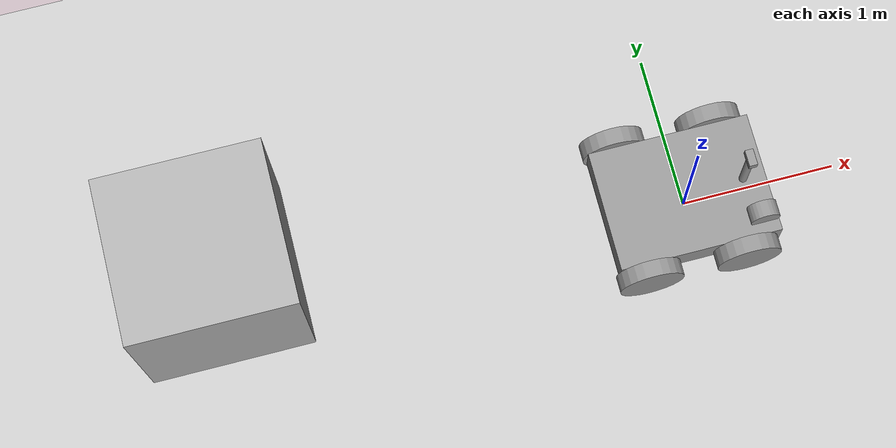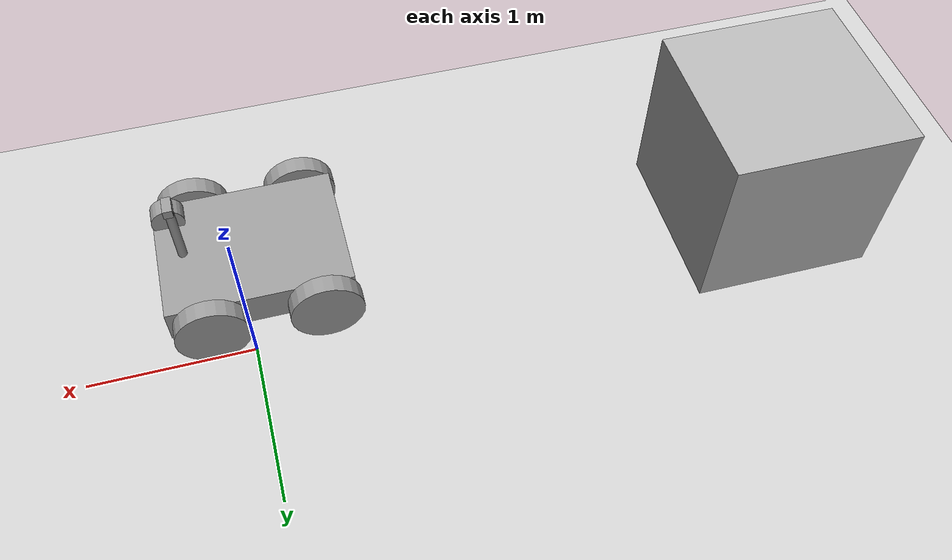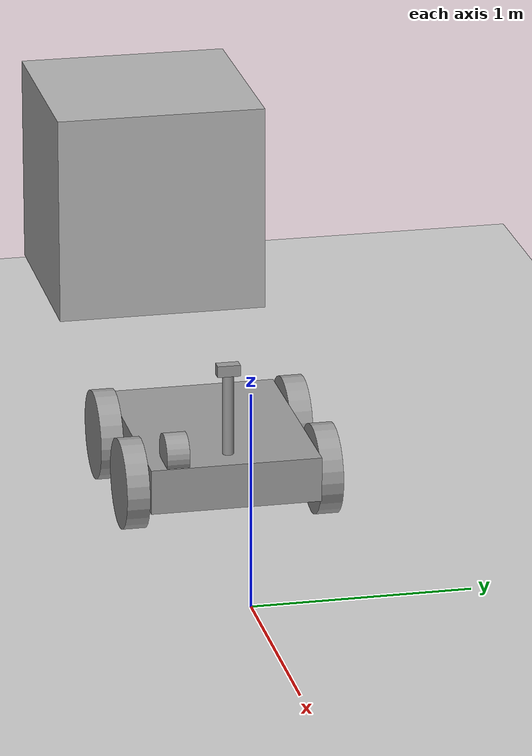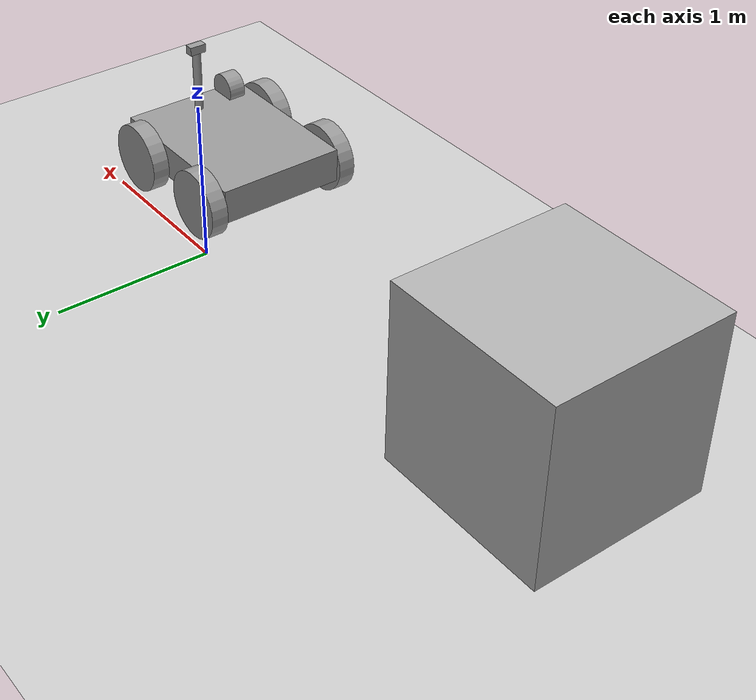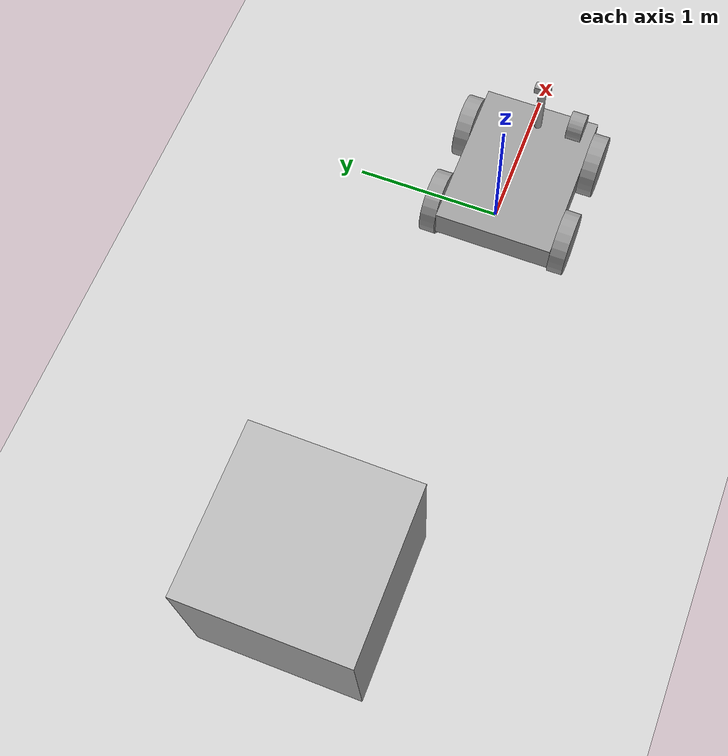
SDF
<sdf version="1.7">
    <world name="test_world">

        <physics name="1ms" type="ignored">
          <max_step_size>0.001</max_step_size>
          <real_time_factor>1.0</real_time_factor>
        </physics>

        <!-- A sun -->
        <include>
            <uri>
                https://fuel.gazebosim.org/1.0/OpenRobotics/models/Sun
            </uri>
        </include>

        <!-- A ground plane -->
        <include>
            <uri>
                https://fuel.gazebosim.org/1.0/OpenRobotics/models/Ground Plane
            </uri>
        </include>

        <!-- My own robot -->
        <include>
            <pose>0 0 1 0 0 0</pose>
            <uri>../models/land_robot</uri>
        </include>

        <!-- Box1 -->
        <include>
            <uri>../models/Box</uri>
        </include>

        <plugin
            filename="ignition-gazebo-physics-system"
            name="ignition::gazebo::systems::Physics">
        </plugin>
        <plugin
            filename="ignition-gazebo-sensors-system"
            name="ignition::gazebo::systems::Sensors">
            <render_engine>ogre</render_engine>
        </plugin>
        <plugin
            filename="ignition-gazebo-user-commands-system"
            name="ignition::gazebo::systems::UserCommands">
        </plugin>
        <plugin
            filename="ignition-gazebo-scene-broadcaster-system"
            name="ignition::gazebo::systems::SceneBroadcaster">
        </plugin>

    <gui fullscreen="0">

      <!-- 3D scene -->
      <plugin filename="MinimalScene" name="3D View">
        <ignition-gui>
          <title>3D View</title>
          <property type="bool" key="showTitleBar">false</property>
          <property type="string" key="state">docked</property>
        </ignition-gui>

        <engine>ogre2</engine>
        <scene>scene</scene>
        <ambient_light>0.4 0.4 0.4</ambient_light>
        <background_color>0.8 0.8 0.8</background_color>
        <camera_pose>-6 0 6 0 0.5 0</camera_pose>
      </plugin>

      <!-- Plugins that add functionality to the scene -->
      <plugin filename="EntityContextMenuPlugin" name="Entity context menu">
        <ignition-gui>
          <property key="state" type="string">floating</property>
          <property key="width" type="double">5</property>
          <property key="height" type="double">5</property>
          <property key="showTitleBar" type="bool">false</property>
        </ignition-gui>
      </plugin>
      <plugin filename="GzSceneManager" name="Scene Manager">
        <ignition-gui>
          <property key="resizable" type="bool">false</property>
          <property key="width" type="double">5</property>
          <property key="height" type="double">5</property>
          <property key="state" type="string">floating</property>
          <property key="showTitleBar" type="bool">false</property>
        </ignition-gui>
      </plugin>
      <plugin filename="InteractiveViewControl" name="Interactive view control">
        <ignition-gui>
          <property key="resizable" type="bool">false</property>
          <property key="width" type="double">5</property>
          <property key="height" type="double">5</property>
          <property key="state" type="string">floating</property>
          <property key="showTitleBar" type="bool">false</property>
        </ignition-gui>
      </plugin>
      <plugin filename="CameraTracking" name="Camera Tracking">
        <ignition-gui>
          <property key="resizable" type="bool">false</property>
          <property key="width" type="double">5</property>
          <property key="height" type="double">5</property>
          <property key="state" type="string">floating</property>
          <property key="showTitleBar" type="bool">false</property>
        </ignition-gui>
      </plugin>
      <!-- World control -->
      <plugin filename="WorldControl" name="World control">
        <ignition-gui>
          <title>World control</title>
          <property type="bool" key="showTitleBar">false</property>
          <property type="bool" key="resizable">false</property>
          <property type="double" key="height">72</property>
          <property type="double" key="width">121</property>
          <property type="double" key="z">1</property>

          <property type="string" key="state">floating</property>
          <anchors target="3D View">
            <line own="left" target="left"/>
            <line own="bottom" target="bottom"/>
          </anchors>
        </ignition-gui>

        <play_pause>true</play_pause>
        <step>true</step>
        <start_paused>true</start_paused>
        <use_event>true</use_event>

      </plugin>

      <!-- World statistics -->
      <plugin filename="WorldStats" name="World stats">
        <ignition-gui>
          <title>World stats</title>
          <property type="bool" key="showTitleBar">false</property>
          <property type="bool" key="resizable">false</property>
          <property type="double" key="height">110</property>
          <property type="double" key="width">290</property>
          <property type="double" key="z">1</property>

          <property type="string" key="state">floating</property>
          <anchors target="3D View">
            <line own="right" target="right"/>
            <line own="bottom" target="bottom"/>
          </anchors>
        </ignition-gui>

        <sim_time>true</sim_time>
        <real_time>true</real_time>
        <real_time_factor>true</real_time_factor>
        <iterations>true</iterations>
      </plugin>

      <plugin filename="ImageDisplay" name="Image Display">
        <ignition-gui>
          <property key="state" type="string">docked</property>
        </ignition-gui>
      </plugin>

      <!-- Inspector -->
      <plugin filename="ComponentInspector" name="Component inspector">
        <ignition-gui>
          <property type="string" key="state">docked</property>
        </ignition-gui>
      </plugin>

      <!-- Entity tree -->
      <plugin filename="EntityTree" name="Entity tree">
        <ignition-gui>
          <property type="string" key="state">docked</property>
        </ignition-gui>
      </plugin>

      <plugin filename="VisualizeLidar" name="Visualize Lidar">
      </plugin>

    </gui>

    </world>
</sdf>

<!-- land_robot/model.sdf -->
<sdf version='1.7'>
    <model name='land_robot'>

        <pose>0 0 1 0 0.0 3.14</pose>

        <link name="base_footprint">
          <pose>-0.110726 -0.145588 -0.265574 0 -0 0</pose>
        </link>

        <link name='base_link'>

          <inertial>
            <mass>5</mass>
            <inertia>
              <ixx>0.166667</ixx>
              <ixy>0</ixy>
              <ixz>0</ixz>
              <iyy>0.166667</iyy>
              <iyz>0</iyz>
              <izz>0.166667</izz>
            </inertia>
            <pose>0 0 0 0 -0 0</pose>
          </inertial>

          <pose>-0.110726 -0.145588 -0.265574 0 -0 0</pose>
          <gravity>1</gravity>
          <self_collide>0</self_collide>
          <kinematic>0</kinematic>
          <enable_wind>0</enable_wind>

          <visual name='visual'>
            <pose>0 0 0 0 -0 0</pose>
            <geometry>
              <box>
                <size>1 0.75 0.2</size>
              </box>
            </geometry>
            <material>
              <lighting>1</lighting>
              <script>
                <uri>file://media/materials/scripts/gazebo.material</uri>
                <name>Gazebo/Grey</name>
              </script>
              <shader type='pixel'>
                <normal_map>__default__</normal_map>
              </shader>
              <ambient>0.1 0.1 0.1 1</ambient>
              <diffuse>0.1 0.1 0.1 1</diffuse>
              <specular>0.1 0.1 0.1 1</specular>
              <emissive>0 0 0 1</emissive>
            </material>
            <transparency>0</transparency>
            <cast_shadows>1</cast_shadows>
          </visual>

          <collision name='collision'>
            <laser_retro>0</laser_retro>
            <max_contacts>10</max_contacts>
            <pose>0 0 0 0 -0 0</pose>
            <geometry>
              <box>
                <size>1 0.75 0.2</size>
              </box>
            </geometry>
            <surface>
              <friction>
                <ode>
                  <mu>1</mu>
                  <mu2>1</mu2>
                  <fdir1>0 0 0</fdir1>
                  <slip1>0</slip1>
                  <slip2>0</slip2>
                </ode>
                <torsional>
                  <coefficient>1</coefficient>
                  <patch_radius>0</patch_radius>
                  <surface_radius>0</surface_radius>
                  <use_patch_radius>1</use_patch_radius>
                  <ode>
                    <slip>0</slip>
                  </ode>
                </torsional>
              </friction>
              <bounce>
                <restitution_coefficient>0</restitution_coefficient>
                <threshold>1e+06</threshold>
              </bounce>
              <contact>
                <collide_without_contact>0</collide_without_contact>
                <collide_without_contact_bitmask>1</collide_without_contact_bitmask>
                <collide_bitmask>1</collide_bitmask>
                <ode>
                  <soft_cfm>0</soft_cfm>
                  <soft_erp>0.2</soft_erp>
                  <kp>1e+13</kp>
                  <kd>1</kd>
                  <max_vel>0.01</max_vel>
                  <min_depth>0</min_depth>
                </ode>
                <bullet>
                  <split_impulse>1</split_impulse>
                  <split_impulse_penetration_threshold>-0.01</split_impulse_penetration_threshold>
                  <soft_cfm>0</soft_cfm>
                  <soft_erp>0.2</soft_erp>
                  <kp>1e+13</kp>
                  <kd>1</kd>
                </bullet>
              </contact>
            </surface>
          </collision>

        </link>

        <link name='rueda_der_tras'>
          <inertial>
            <mass>5</mass>
            <inertia>
              <ixx>0.145833</ixx>
              <ixy>0</ixy>
              <ixz>0</ixz>
              <iyy>0.145833</iyy>
              <iyz>0</iyz>
              <izz>0.125</izz>
            </inertia>
            <pose>0 0 0 0 -0 0</pose>
          </inertial>
          <pose>-0.437626 -0.571744 -0.298299 1.5708 -0 0</pose>
          <gravity>1</gravity>
          <self_collide>0</self_collide>
          <kinematic>0</kinematic>
          <enable_wind>0</enable_wind>
          <visual name='visual'>
            <pose>0 0 0 0 -0 0</pose>
            <geometry>
              <cylinder>
                <radius>0.2</radius>
                <length>0.1</length>
              </cylinder>
            </geometry>
            <material>
              <lighting>1</lighting>
              <script>
                <uri>file://media/materials/scripts/gazebo.material</uri>
                <name>Gazebo/Grey</name>
              </script>
              <shader type='pixel'>
                <normal_map>__default__</normal_map>
              </shader>
              <ambient>0.3 0.3 0.3 1</ambient>
              <diffuse>0.7 0.7 0.7 1</diffuse>
              <specular>0.01 0.01 0.01 1</specular>
              <emissive>0 0 0 1</emissive>
            </material>
            <transparency>0</transparency>
            <cast_shadows>1</cast_shadows>
          </visual>
          <collision name='collision'>
            <laser_retro>0</laser_retro>
            <max_contacts>10</max_contacts>
            <pose>0 0 0 0 -0 0</pose>
            <geometry>
              <cylinder>
                <radius>0.2</radius>
                <length>0.1</length>
              </cylinder>
            </geometry>
            <surface>
              <friction>
                <ode>
                  <mu>0.1</mu>
                  <mu2>0.1</mu2>
                  <fdir1>0 0 0</fdir1>
                  <slip1>0</slip1>
                  <slip2>0</slip2>
                </ode>
                <torsional>
                  <coefficient>1</coefficient>
                  <patch_radius>0</patch_radius>
                  <surface_radius>0</surface_radius>
                  <use_patch_radius>1</use_patch_radius>
                  <ode>
                    <slip>0</slip>
                  </ode>
                </torsional>
              </friction>
              <bounce>
                <restitution_coefficient>0</restitution_coefficient>
                <threshold>1e+06</threshold>
              </bounce>
              <contact>
                <collide_without_contact>0</collide_without_contact>
                <collide_without_contact_bitmask>1</collide_without_contact_bitmask>
                <collide_bitmask>1</collide_bitmask>
                <ode>
                  <soft_cfm>0</soft_cfm>
                  <soft_erp>0.2</soft_erp>
                  <kp>1e+13</kp>
                  <kd>1</kd>
                  <max_vel>0.01</max_vel>
                  <min_depth>0</min_depth>
                </ode>
                <bullet>
                  <split_impulse>1</split_impulse>
                  <split_impulse_penetration_threshold>-0.01</split_impulse_penetration_threshold>
                  <soft_cfm>0</soft_cfm>
                  <soft_erp>0.2</soft_erp>
                  <kp>1e+13</kp>
                  <kd>1</kd>
                </bullet>
              </contact>
            </surface>
          </collision>
        </link>

        <link name='rueda_der_del'>
          <inertial>
            <mass>5</mass>
            <inertia>
              <ixx>0.145833</ixx>
              <ixy>0</ixy>
              <ixz>0</ixz>
              <iyy>0.145833</iyy>
              <iyz>0</iyz>
              <izz>0.125</izz>
            </inertia>
            <pose>0 0 0 0 -0 0</pose>
          </inertial>
          <pose>0.171311 -0.571744 -0.298299 1.5708 -0 0</pose>
          <gravity>1</gravity>
          <self_collide>0</self_collide>
          <kinematic>0</kinematic>
          <enable_wind>0</enable_wind>
          <visual name='visual'>
            <pose>0 0 0 0 -0 0</pose>
            <geometry>
              <cylinder>
                <radius>0.2</radius>
                <length>0.1</length>
              </cylinder>
            </geometry>
            <material>
              <lighting>1</lighting>
              <script>
                <uri>file://media/materials/scripts/gazebo.material</uri>
                <name>Gazebo/Grey</name>
              </script>
              <shader type='pixel'>
                <normal_map>__default__</normal_map>
              </shader>
              <ambient>0.3 0.3 0.3 1</ambient>
              <diffuse>0.7 0.7 0.7 1</diffuse>
              <specular>0.01 0.01 0.01 1</specular>
              <emissive>0 0 0 1</emissive>
            </material>
            <transparency>0</transparency>
            <cast_shadows>1</cast_shadows>
          </visual>
          <collision name='collision'>
            <laser_retro>0</laser_retro>
            <max_contacts>10</max_contacts>
            <pose>0 0 0 0 -0 0</pose>
            <geometry>
              <cylinder>
                <radius>0.2</radius>
                <length>0.1</length>
              </cylinder>
            </geometry>
            <surface>
              <friction>
                <ode>
                  <mu>1</mu>
                  <mu2>1</mu2>
                  <fdir1>0 0 0</fdir1>
                  <slip1>0</slip1>
                  <slip2>0</slip2>
                </ode>
                <torsional>
                  <coefficient>1</coefficient>
                  <patch_radius>0</patch_radius>
                  <surface_radius>0</surface_radius>
                  <use_patch_radius>1</use_patch_radius>
                  <ode>
                    <slip>0</slip>
                  </ode>
                </torsional>
              </friction>
              <bounce>
                <restitution_coefficient>0</restitution_coefficient>
                <threshold>1e+06</threshold>
              </bounce>
              <contact>
                <collide_without_contact>0</collide_without_contact>
                <collide_without_contact_bitmask>1</collide_without_contact_bitmask>
                <collide_bitmask>1</collide_bitmask>
                <ode>
                  <soft_cfm>0</soft_cfm>
                  <soft_erp>0.2</soft_erp>
                  <kp>1e+13</kp>
                  <kd>1</kd>
                  <max_vel>0.01</max_vel>
                  <min_depth>0</min_depth>
                </ode>
                <bullet>
                  <split_impulse>1</split_impulse>
                  <split_impulse_penetration_threshold>-0.01</split_impulse_penetration_threshold>
                  <soft_cfm>0</soft_cfm>
                  <soft_erp>0.2</soft_erp>
                  <kp>1e+13</kp>
                  <kd>1</kd>
                </bullet>
              </contact>
            </surface>
          </collision>
        </link>

        <link name='rueda_izq_tras'>
          <inertial>
            <mass>5</mass>
            <inertia>
              <ixx>0.145833</ixx>
              <ixy>0</ixy>
              <ixz>0</ixz>
              <iyy>0.145833</iyy>
              <iyz>0</iyz>
              <izz>0.125</izz>
            </inertia>
            <pose>0 0 0 0 -0 0</pose>
          </inertial>
          <pose>-0.437626 0.280995 -0.298299 1.5708 -0 0</pose>
          <gravity>1</gravity>
          <self_collide>0</self_collide>
          <kinematic>0</kinematic>
          <enable_wind>0</enable_wind>
          <visual name='visual'>
            <pose>0 0 0 0 -0 0</pose>
            <geometry>
              <cylinder>
                <radius>0.2</radius>
                <length>0.1</length>
              </cylinder>
            </geometry>
            <material>
              <lighting>1</lighting>
              <script>
                <uri>file://media/materials/scripts/gazebo.material</uri>
                <name>Gazebo/Grey</name>
              </script>
              <shader type='pixel'>
                <normal_map>__default__</normal_map>
              </shader>
              <ambient>0.3 0.3 0.3 1</ambient>
              <diffuse>0.7 0.7 0.7 1</diffuse>
              <specular>0.01 0.01 0.01 1</specular>
              <emissive>0 0 0 1</emissive>
            </material>
            <transparency>0</transparency>
            <cast_shadows>1</cast_shadows>
          </visual>
          <collision name='collision'>
            <laser_retro>0</laser_retro>
            <max_contacts>10</max_contacts>
            <pose>0 0 0 0 -0 0</pose>
            <geometry>
              <cylinder>
                <radius>0.2</radius>
                <length>0.1</length>
              </cylinder>
            </geometry>
            <surface>
              <friction>
                <ode>
                  <mu>0.1</mu>
                  <mu2>0.1</mu2>
                  <fdir1>0 0 0</fdir1>
                  <slip1>0</slip1>
                  <slip2>0</slip2>
                </ode>
                <torsional>
                  <coefficient>1</coefficient>
                  <patch_radius>0</patch_radius>
                  <surface_radius>0</surface_radius>
                  <use_patch_radius>1</use_patch_radius>
                  <ode>
                    <slip>0</slip>
                  </ode>
                </torsional>
              </friction>
              <bounce>
                <restitution_coefficient>0</restitution_coefficient>
                <threshold>1e+06</threshold>
              </bounce>
              <contact>
                <collide_without_contact>0</collide_without_contact>
                <collide_without_contact_bitmask>1</collide_without_contact_bitmask>
                <collide_bitmask>1</collide_bitmask>
                <ode>
                  <soft_cfm>0</soft_cfm>
                  <soft_erp>0.2</soft_erp>
                  <kp>1e+13</kp>
                  <kd>1</kd>
                  <max_vel>0.01</max_vel>
                  <min_depth>0</min_depth>
                </ode>
                <bullet>
                  <split_impulse>1</split_impulse>
                  <split_impulse_penetration_threshold>-0.01</split_impulse_penetration_threshold>
                  <soft_cfm>0</soft_cfm>
                  <soft_erp>0.2</soft_erp>
                  <kp>1e+13</kp>
                  <kd>1</kd>
                </bullet>
              </contact>
            </surface>
          </collision>
        </link>

        <link name='rueda_izq_del'>
          <inertial>
            <mass>5</mass>
            <inertia>
              <ixx>0.145833</ixx>
              <ixy>0</ixy>
              <ixz>0</ixz>
              <iyy>0.145833</iyy>
              <iyz>0</iyz>
              <izz>0.125</izz>
            </inertia>
            <pose>0 0 0 0 -0 0</pose>
          </inertial>
          <pose>0.171311 0.280995 -0.298299 1.5708 -0 0</pose>
          <gravity>1</gravity>
          <self_collide>0</self_collide>
          <kinematic>0</kinematic>
          <enable_wind>0</enable_wind>
          <visual name='visual'>
            <pose>0 0 0 0 -0 0</pose>
            <geometry>
              <cylinder>
                <radius>0.2</radius>
                <length>0.1</length>
              </cylinder>
            </geometry>
            <material>
              <lighting>1</lighting>
              <script>
                <uri>file://media/materials/scripts/gazebo.material</uri>
                <name>Gazebo/Grey</name>
              </script>
              <shader type='pixel'>
                <normal_map>__default__</normal_map>
              </shader>
              <ambient>0.3 0.3 0.3 1</ambient>
              <diffuse>0.7 0.7 0.7 1</diffuse>
              <specular>0.01 0.01 0.01 1</specular>
              <emissive>0 0 0 1</emissive>
            </material>
            <transparency>0</transparency>
            <cast_shadows>1</cast_shadows>
          </visual>
          <collision name='collision'>
            <laser_retro>0</laser_retro>
            <max_contacts>10</max_contacts>
            <pose>0 0 0 0 -0 0</pose>
            <geometry>
              <cylinder>
                <radius>0.2</radius>
                <length>0.1</length>
              </cylinder>
            </geometry>
            <surface>
              <friction>
                <ode>
                  <mu>1</mu>
                  <mu2>1</mu2>
                  <fdir1>0 0 0</fdir1>
                  <slip1>0</slip1>
                  <slip2>0</slip2>
                </ode>
                <torsional>
                  <coefficient>1</coefficient>
                  <patch_radius>0</patch_radius>
                  <surface_radius>0</surface_radius>
                  <use_patch_radius>1</use_patch_radius>
                  <ode>
                    <slip>0</slip>
                  </ode>
                </torsional>
              </friction>
              <bounce>
                <restitution_coefficient>0</restitution_coefficient>
                <threshold>1e+06</threshold>
              </bounce>
              <contact>
                <collide_without_contact>0</collide_without_contact>
                <collide_without_contact_bitmask>1</collide_without_contact_bitmask>
                <collide_bitmask>1</collide_bitmask>
                <ode>
                  <soft_cfm>0</soft_cfm>
                  <soft_erp>0.2</soft_erp>
                  <kp>1e+13</kp>
                  <kd>1</kd>
                  <max_vel>0.01</max_vel>
                  <min_depth>0</min_depth>
                </ode>
                <bullet>
                  <split_impulse>1</split_impulse>
                  <split_impulse_penetration_threshold>-0.01</split_impulse_penetration_threshold>
                  <soft_cfm>0</soft_cfm>
                  <soft_erp>0.2</soft_erp>
                  <kp>1e+13</kp>
                  <kd>1</kd>
                </bullet>
              </contact>
            </surface>
          </collision>
        </link>

        <link name='soporte_camara'>
          <inertial>
            <mass>1</mass>
            <inertia>
              <ixx>0.145833</ixx>
              <ixy>0</ixy>
              <ixz>0</ixz>
              <iyy>0.145833</iyy>
              <iyz>0</iyz>
              <izz>0.125</izz>
            </inertia>
            <pose>0 0 0 0 -0 0</pose>
          </inertial>
          <pose>0.250663 -0.155261 0.031715 0 -0 0</pose>
          <gravity>1</gravity>
          <self_collide>0</self_collide>
          <kinematic>0</kinematic>
          <enable_wind>0</enable_wind>
          <visual name='visual'>
            <pose>0 0 0 0 -0 0</pose>
            <geometry>
              <cylinder>
                <radius>0.025</radius>
                <length>0.4</length>
              </cylinder>
            </geometry>
            <material>
              <lighting>1</lighting>
              <script>
                <uri>file://media/materials/scripts/gazebo.material</uri>
                <name>Gazebo/Grey</name>
              </script>
              <shader type='pixel'>
                <normal_map>__default__</normal_map>
              </shader>
              <ambient>0.3 0.3 0.3 1</ambient>
              <diffuse>0.7 0.7 0.7 1</diffuse>
              <specular>0.01 0.01 0.01 1</specular>
              <emissive>0 0 0 1</emissive>
            </material>
            <transparency>0</transparency>
            <cast_shadows>1</cast_shadows>
          </visual>
          <collision name='collision'>
            <laser_retro>0</laser_retro>
            <max_contacts>10</max_contacts>
            <pose>0 0 0 0 -0 0</pose>
            <geometry>
              <cylinder>
                <radius>0.025</radius>
                <length>0.4</length>
              </cylinder>
            </geometry>
            <surface>
              <friction>
                <ode>
                  <mu>0.1</mu>
                  <mu2>0.1</mu2>
                  <fdir1>0 0 0</fdir1>
                  <slip1>0</slip1>
                  <slip2>0</slip2>
                </ode>
                <torsional>
                  <coefficient>1</coefficient>
                  <patch_radius>0</patch_radius>
                  <surface_radius>0</surface_radius>
                  <use_patch_radius>1</use_patch_radius>
                  <ode>
                    <slip>0</slip>
                  </ode>
                </torsional>
              </friction>
              <bounce>
                <restitution_coefficient>0</restitution_coefficient>
                <threshold>1e+06</threshold>
              </bounce>
              <contact>
                <collide_without_contact>0</collide_without_contact>
                <collide_without_contact_bitmask>1</collide_without_contact_bitmask>
                <collide_bitmask>1</collide_bitmask>
                <ode>
                  <soft_cfm>0</soft_cfm>
                  <soft_erp>0.2</soft_erp>
                  <kp>1e+13</kp>
                  <kd>1</kd>
                  <max_vel>0.01</max_vel>
                  <min_depth>0</min_depth>
                </ode>
                <bullet>
                  <split_impulse>1</split_impulse>
                  <split_impulse_penetration_threshold>-0.01</split_impulse_penetration_threshold>
                  <soft_cfm>0</soft_cfm>
                  <soft_erp>0.2</soft_erp>
                  <kp>1e+13</kp>
                  <kd>1</kd>
                </bullet>
              </contact>
            </surface>
          </collision>
        </link>

        <link name='camara'>
          <inertial>
              <mass>1</mass>
              <inertia>
                <ixx>0.166667</ixx>
                <ixy>0</ixy>
                <ixz>0</ixz>
                <iyy>0.166667</iyy>
                <iyz>0</iyz>
                <izz>0.166667</izz>
              </inertia>
              <pose>0 0 0 0 -0 0</pose>
          </inertial>
          <pose>0.250663 -0.155261 0.22 0 -0 0</pose>
          <gravity>1</gravity>
          <self_collide>0</self_collide>
          <kinematic>0</kinematic>
          <enable_wind>0</enable_wind>
          <visual name='visual'>
            <pose>0 0 0 0 -0 0</pose>
            <geometry>
              <box>
                <size>0.050000 0.100000 0.05000</size>
              </box>
            </geometry>
            <material>
              <lighting>1</lighting>
              <script>
                <uri>file://media/materials/scripts/gazebo.material</uri>
                <name>Gazebo/Grey</name>
              </script>
              <shader type='pixel'>
                <normal_map>__default__</normal_map>
              </shader>
              <ambient>0.1 0.1 0.1 1</ambient>
              <diffuse>0.1 0.1 0.1 1</diffuse>
              <specular>0.1 0.1 0.1 1</specular>
              <emissive>0 0 0 1</emissive>
            </material>
            <transparency>0</transparency>
            <cast_shadows>1</cast_shadows>
          </visual>
          <collision name='collision'>
            <laser_retro>0</laser_retro>
            <max_contacts>10</max_contacts>
            <pose>0 0 0 0 -0 0</pose>
            <geometry>
              <box>
                <size>0.050000 0.100000 0.050000</size>
              </box>
            </geometry>
            <surface>
              <friction>
                <ode>
                  <mu>1</mu>
                  <mu2>1</mu2>
                  <fdir1>0 0 0</fdir1>
                  <slip1>0</slip1>
                  <slip2>0</slip2>
                </ode>
                <torsional>
                  <coefficient>1</coefficient>
                  <patch_radius>0</patch_radius>
                  <surface_radius>0</surface_radius>
                  <use_patch_radius>1</use_patch_radius>
                  <ode>
                    <slip>0</slip>
                  </ode>
                </torsional>
              </friction>
              <bounce>
                <restitution_coefficient>0</restitution_coefficient>
                <threshold>1e+06</threshold>
              </bounce>
              <contact>
                <collide_without_contact>0</collide_without_contact>
                <collide_without_contact_bitmask>1</collide_without_contact_bitmask>
                <collide_bitmask>1</collide_bitmask>
                <ode>
                  <soft_cfm>0</soft_cfm>
                  <soft_erp>0.2</soft_erp>
                  <kp>1e+13</kp>
                  <kd>1</kd>
                  <max_vel>0.01</max_vel>
                  <min_depth>0</min_depth>
                </ode>
                <bullet>
                  <split_impulse>1</split_impulse>
                  <split_impulse_penetration_threshold>-0.01</split_impulse_penetration_threshold>
                  <soft_cfm>0</soft_cfm>
                  <soft_erp>0.2</soft_erp>
                  <kp>1e+13</kp>
                  <kd>1</kd>
                </bullet>
              </contact>
            </surface>
          </collision>
          <sensor name="camera" type="camera">
            <camera>
                <horizontal_fov>1.047</horizontal_fov>
                <image>
                    <width>640</width>
                    <height>840</height>
                </image>
                <clip>
                    <near>0.1</near>
                    <far>100</far>
                </clip>
            </camera>

            <always_on>1</always_on>
            <update_rate>30</update_rate>
            <visualize>true</visualize>
            <topic>camera</topic>

          </sensor>
        </link>

        <link name='lidar'>
          <inertial>
              <mass>1</mass>
              <inertia>
                <ixx>0</ixx>
                <ixy>0</ixy>
                <ixz>0</ixz>
                <iyy>0</iyy>
                <iyz>0</iyz>
                <izz>0</izz>
              </inertia>
              <pose>0 0 0 0 0 0</pose>
          </inertial>
          <pose>0.3 -0.4 -0.125 0 -0 0</pose>
          <gravity>1</gravity>
          <self_collide>0</self_collide>
          <kinematic>0</kinematic>
          <enable_wind>0</enable_wind>
          <visual name='visual'>
            <pose>0 0 0 -1.57 0 0</pose>
            <geometry>
              <cylinder>
                <radius>0.09</radius>
                <length>0.1</length>
              </cylinder>
            </geometry>
            <material>
              <lighting>1</lighting>
              <script>
                <uri>file://media/materials/scripts/gazebo.material</uri>
                <name>Gazebo/Grey</name>
              </script>
              <shader type='pixel'>
                <normal_map>__default__</normal_map>
              </shader>
              <ambient>0.1 0.1 0.1 1</ambient>
              <diffuse>0.1 0.1 0.1 1</diffuse>
              <specular>0.1 0.1 0.1 1</specular>
              <emissive>0 0 0 1</emissive>
            </material>
            <transparency>0</transparency>
            <cast_shadows>1</cast_shadows>
          </visual>
          <collision name='collision'>
            <laser_retro>0</laser_retro>
            <max_contacts>10</max_contacts>
            <pose>0 0 0 0 -0 0</pose>
            <geometry>
              <cylinder>
                <radius>0.2</radius>
                <length>0.1</length>
              </cylinder>
            </geometry>
            <surface>
              <friction>
                <ode>
                  <mu>0.1</mu>
                  <mu2>0.1</mu2>
                  <fdir1>0 0 0</fdir1>
                  <slip1>0</slip1>
                  <slip2>0</slip2>
                </ode>
                <torsional>
                  <coefficient>1</coefficient>
                  <patch_radius>0</patch_radius>
                  <surface_radius>0</surface_radius>
                  <use_patch_radius>1</use_patch_radius>
                  <ode>
                    <slip>0</slip>
                  </ode>
                </torsional>
              </friction>
              <bounce>
                <restitution_coefficient>0</restitution_coefficient>
                <threshold>1e+06</threshold>
              </bounce>
              <contact>
                <collide_without_contact>0</collide_without_contact>
                <collide_without_contact_bitmask>1</collide_without_contact_bitmask>
                <collide_bitmask>1</collide_bitmask>
                <ode>
                  <soft_cfm>0</soft_cfm>
                  <soft_erp>0.2</soft_erp>
                  <kp>1e+13</kp>
                  <kd>1</kd>
                  <max_vel>0.01</max_vel>
                  <min_depth>0</min_depth>
                </ode>
                <bullet>
                  <split_impulse>1</split_impulse>
                  <split_impulse_penetration_threshold>-0.01</split_impulse_penetration_threshold>
                  <soft_cfm>0</soft_cfm>
                  <soft_erp>0.2</soft_erp>
                  <kp>1e+13</kp>
                  <kd>1</kd>
                </bullet>
              </contact>
            </surface>
          </collision>
          <sensor name='gpu_lidar' type='gpu_lidar'>
            <pose>0 0 0 0 -0 0</pose>
              <topic>lidar</topic>
              <update_rate>20</update_rate>
              <lidar>
                <scan>
                  <horizontal>
                    <samples>640</samples>
                    <resolution>1</resolution>
                    <min_angle>-1.396263</min_angle>
                    <max_angle>1.396263</max_angle>
                  </horizontal>
                  <vertical>
                    <samples>1</samples>
                    <resolution>1</resolution>
                    <min_angle>0.0</min_angle>
                    <max_angle>0.0</max_angle>
                  </vertical>
                </scan>
                <range>
                  <min>0.08</min>
                  <max>10.0</max>
                  <resolution>0.01</resolution>
                </range>
              </lidar>
              <alwaysOn>1</alwaysOn>
              <visualize>true</visualize>
            </sensor>
        </link>

        <joint name="base_joint" type="fixed">
          <pose>0 0 0 0 -0 0</pose>
          <parent>base_footprint</parent>
          <child>base_link</child>
          <pose>0 0 0 0 -0 0</pose>
        </joint>

        <joint name='base_link_JOINT_rueda_der_tras' type='revolute'>
          <parent>base_link</parent>
          <child>rueda_der_tras</child>
          <pose>0 0 0 0 -0 0</pose>
          <axis>
            <xyz>0 0 -1</xyz>
            <limit>
              <lower>-1.79769e+308</lower>
              <upper>1.79769e+308</upper>
              <effort>-1</effort>
              <velocity>-1</velocity>
            </limit>
            <dynamics>
              <spring_reference>0</spring_reference>
              <spring_stiffness>0</spring_stiffness>
              <damping>0</damping>
              <friction>0</friction>
            </dynamics>
          </axis>
          <physics>
            <ode>
              <limit>
                <cfm>0</cfm>
                <erp>0.2</erp>
              </limit>
              <suspension>
                <cfm>0</cfm>
                <erp>0.2</erp>
              </suspension>
            </ode>
          </physics>
        </joint>

        <joint name='base_link_JOINT_rueda_der_del' type='revolute'>
          <parent>base_link</parent>
          <child>rueda_der_del</child>
          <pose>0 0 0 0 -0 0</pose>
          <axis>
            <xyz>0 0 -1</xyz>
            <limit>
              <lower>-1.79769e+308</lower>
              <upper>1.79769e+308</upper>
              <effort>-1</effort>
              <velocity>-1</velocity>
            </limit>
            <dynamics>
              <spring_reference>0</spring_reference>
              <spring_stiffness>0</spring_stiffness>
              <damping>0</damping>
            </dynamics>
          </axis>
          <physics>
            <ode>
              <limit>
                <cfm>0</cfm>
                <erp>0.2</erp>
              </limit>
              <suspension>
                <cfm>0</cfm>
                <erp>0.2</erp>
              </suspension>
            </ode>
          </physics>
        </joint>

        <joint name='base_link_JOINT_rueda_izq_tras' type='revolute'>
          <parent>base_link</parent>
          <child>rueda_izq_tras</child>
          <pose>0 0 0 0 -0 0</pose>
          <axis>
            <xyz>-0 -0 -1</xyz>
            <limit>
              <lower>-1.79769e+308</lower>
              <upper>1.79769e+308</upper>
              <effort>-1</effort>
              <velocity>-1</velocity>
            </limit>
            <dynamics>
              <spring_reference>0</spring_reference>
              <spring_stiffness>0</spring_stiffness>
              <damping>0</damping>
            </dynamics>
          </axis>
          <physics>
            <ode>
              <limit>
                <cfm>0</cfm>
                <erp>0.2</erp>
              </limit>
              <suspension>
                <cfm>0</cfm>
                <erp>0.2</erp>
              </suspension>
            </ode>
          </physics>
        </joint>

        <joint name='base_link_JOINT_rueda_izq_del' type='revolute'>
          <parent>base_link</parent>
          <child>rueda_izq_del</child>
          <pose>0 0 0 0 -0 0</pose>
          <axis>
            <xyz>-0 -0 -1</xyz>
            <limit>
              <lower>-1.79769e+308</lower>
              <upper>1.79769e+308</upper>
              <effort>-1</effort>
              <velocity>-1</velocity>
            </limit>
            <dynamics>
              <spring_reference>0</spring_reference>
              <spring_stiffness>0</spring_stiffness>
              <damping>0</damping>
            </dynamics>
          </axis>
          <physics>
            <ode>
              <limit>
                <cfm>0</cfm>
                <erp>0.2</erp>
              </limit>
              <suspension>
                <cfm>0</cfm>
                <erp>0.2</erp>
              </suspension>
            </ode>
          </physics>
        </joint>

        <joint name='base_link_JOINT_soporte_camara' type='revolute'>
          <parent>base_link</parent>
          <child>soporte_camara</child>
          <pose>0 0 0 0 -0 0</pose>
          <axis>
            <xyz>-0 -0 -1</xyz>
            <limit>
              <lower>-1.79769e+308</lower>
              <upper>1.79769e+308</upper>
              <effort>-1</effort>
              <velocity>-1</velocity>
            </limit>
            <dynamics>
              <spring_reference>0</spring_reference>
              <spring_stiffness>0</spring_stiffness>
              <damping>0</damping>
            </dynamics>
          </axis>
          <physics>
            <ode>
              <limit>
                <cfm>0</cfm>
                <erp>0.2</erp>
              </limit>
              <suspension>
                <cfm>0</cfm>
                <erp>0.2</erp>
              </suspension>
            </ode>
          </physics>
        </joint>

        <joint name='base_link_JOINT_camara' type='fixed'>
          <parent>soporte_camara</parent>
          <child>camara</child>
          <pose>0 0 0 0 -0 0</pose>
          <axis>
            <xyz>-0 -0 -1</xyz>
            <limit>
              <lower>-1.79769e+308</lower>
              <upper>1.79769e+308</upper>
              <effort>-1</effort>
              <velocity>-1</velocity>
            </limit>
            <dynamics>
              <spring_reference>0</spring_reference>
              <spring_stiffness>0</spring_stiffness>
              <damping>0</damping>
            </dynamics>
          </axis>
          <physics>
            <ode>
              <limit>
                <cfm>0</cfm>
                <erp>0.2</erp>
              </limit>
              <suspension>
                <cfm>0</cfm>
                <erp>0.2</erp>
              </suspension>
            </ode>
          </physics>
        </joint>

        <joint name='base_link_JOINT_lidar' type='fixed'>
          <parent>base_link</parent>
          <child>lidar</child>
          <pose>0 0 0 0 -0 0</pose>
          <axis>
            <xyz>-0 -0 -1</xyz>
            <limit>
              <lower>-1.79769e+308</lower>
              <upper>1.79769e+308</upper>
              <effort>-1</effort>
              <velocity>-1</velocity>
            </limit>
            <dynamics>
              <spring_reference>0</spring_reference>
              <spring_stiffness>0</spring_stiffness>
              <damping>0</damping>
            </dynamics>
          </axis>
          <physics>
            <ode>
              <limit>
                <cfm>0</cfm>
                <erp>0.2</erp>
              </limit>
              <suspension>
                <cfm>0</cfm>
                <erp>0.2</erp>
              </suspension>
            </ode>
          </physics>
        </joint>

        <static>0</static>
        <allow_auto_disable>1</allow_auto_disable>

        <plugin
            filename="ignition-gazebo-diff-drive-system"
            name="ignition::gazebo::systems::DiffDrive">
            <left_joint>base_link_JOINT_rueda_izq_del</left_joint>
            <right_joint>base_link_JOINT_rueda_der_del</right_joint>
            <wheel_separation>0.75</wheel_separation>
            <wheel_radius>0.25</wheel_radius>

            <odom_publish_frequency>20</odom_publish_frequency>
            <max_linear_acceleration>1</max_linear_acceleration>
            <min_linear_acceleration>-1</min_linear_acceleration>
            <max_angular_acceleration>2</max_angular_acceleration>
            <min_angular_acceleration>-2</min_angular_acceleration>
            <max_linear_velocity>0.5</max_linear_velocity>
            <min_linear_velocity>-0.5</min_linear_velocity>
            <max_angular_velocity>1</max_angular_velocity>
            <min_angular_velocity>-1</min_angular_velocity>
            <topic>/cmd_vel</topic>
            <base_frame_id>base_link</base_frame_id>
            <odom_frame_id>odom</odom_frame_id>
        </plugin>

        <plugin
            filename="ignition-gazebo-joint-position-controller-system"
            name="ignition::gazebo::systems::JointPositionController">
            <joint_name>base_link_JOINT_soporte_camara</joint_name>
            <topic>cmd_camera</topic>
            <p_gain>3.5</p_gain>
            <i_gain>0.01</i_gain>
            <d_gain>2</d_gain>
            <i_max>1</i_max>
            <i_min>-1</i_min>
            <cmd_max>1000</cmd_max>
            <cmd_min>-1000</cmd_min>
        </plugin>

        <plugin
            filename="libignition-gazebo-joint-state-publisher-system.so"
            name="ignition::gazebo::systems::JointStatePublisher">
            <joint_name>base_link_JOINT_rueda_izq_del</joint_name>
            <joint_name>base_link_JOINT_rueda_der_del</joint_name>
            <joint_name>base_link_JOINT_rueda_izq_tras</joint_name>
            <joint_name>base_link_JOINT_rueda_der_tras</joint_name>
            <joint_name>base_link_JOINT_soporte_camara</joint_name>

        </plugin>

    </model>

  </sdf>

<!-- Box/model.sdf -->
<sdf version='1.7'>
  <model name='Box'>
    <pose>-3 0 0.5 0 0.0 3.14</pose>
    <link name='link_0'>
      <inertial>
        <mass>1</mass>
        <inertia>
          <ixx>0.166667</ixx>
          <ixy>0</ixy>
          <ixz>0</ixz>
          <iyy>0.166667</iyy>
          <iyz>0</iyz>
          <izz>0.166667</izz>
        </inertia>
        <pose>0 0 0 0 -0 0</pose>
      </inertial>
      <pose>-0.022578 -0.096142 0.5 0 -0 0</pose>
      <gravity>1</gravity>
      <self_collide>0</self_collide>
      <kinematic>0</kinematic>
      <enable_wind>0</enable_wind>
      <visual name='visual'>
        <pose>0 0 0 0 -0 0</pose>
        <geometry>
          <box>
            <size>1 1 1</size>
          </box>
        </geometry>
        <material>
          <lighting>1</lighting>
          <script>
            <uri>model://Box/materials/scripts</uri>
            <uri>model://Box/materials/textures</uri>
            <name>MyInfo/Diffuse</name>
          </script>
          <shader type='pixel'>
            <normal_map>__default__</normal_map>
          </shader>
          <ambient>0.3 0.3 0.3 1</ambient>
          <diffuse>0.7 0.7 0.7 1</diffuse>
          <specular>0.01 0.01 0.01 1</specular>
          <emissive>0 0 0 1</emissive>
        </material>
        <transparency>0</transparency>
        <cast_shadows>1</cast_shadows>
      </visual>
      <collision name='collision'>
        <laser_retro>0</laser_retro>
        <max_contacts>10</max_contacts>
        <pose>0 0 0 0 -0 0</pose>
        <geometry>
          <box>
            <size>1 1 1</size>
          </box>
        </geometry>
        <surface>
          <friction>
            <ode>
              <mu>1</mu>
              <mu2>1</mu2>
              <fdir1>0 0 0</fdir1>
              <slip1>0</slip1>
              <slip2>0</slip2>
            </ode>
            <torsional>
              <coefficient>1</coefficient>
              <patch_radius>0</patch_radius>
              <surface_radius>0</surface_radius>
              <use_patch_radius>1</use_patch_radius>
              <ode>
                <slip>0</slip>
              </ode>
            </torsional>
          </friction>
          <bounce>
            <restitution_coefficient>0</restitution_coefficient>
            <threshold>1e+06</threshold>
          </bounce>
          <contact>
            <collide_without_contact>0</collide_without_contact>
            <collide_without_contact_bitmask>1</collide_without_contact_bitmask>
            <collide_bitmask>1</collide_bitmask>
            <ode>
              <soft_cfm>0</soft_cfm>
              <soft_erp>0.2</soft_erp>
              <kp>1e+13</kp>
              <kd>1</kd>
              <max_vel>0.01</max_vel>
              <min_depth>0</min_depth>
            </ode>
            <bullet>
              <split_impulse>1</split_impulse>
              <split_impulse_penetration_threshold>-0.01</split_impulse_penetration_threshold>
              <soft_cfm>0</soft_cfm>
              <soft_erp>0.2</soft_erp>
              <kp>1e+13</kp>
              <kd>1</kd>
            </bullet>
          </contact>
        </surface>
      </collision>
    </link>
    <static>0</static>
    <allow_auto_disable>1</allow_auto_disable>
  </model>
</sdf>
